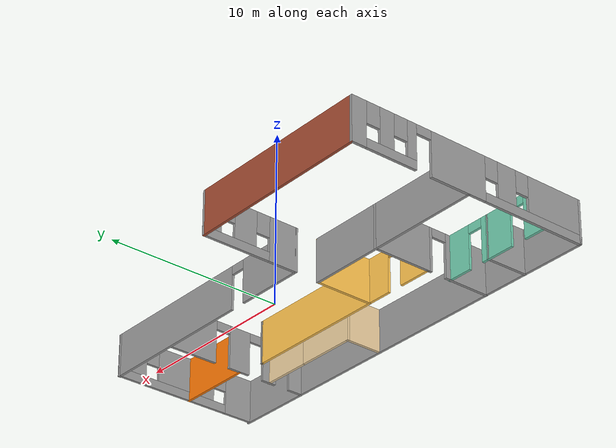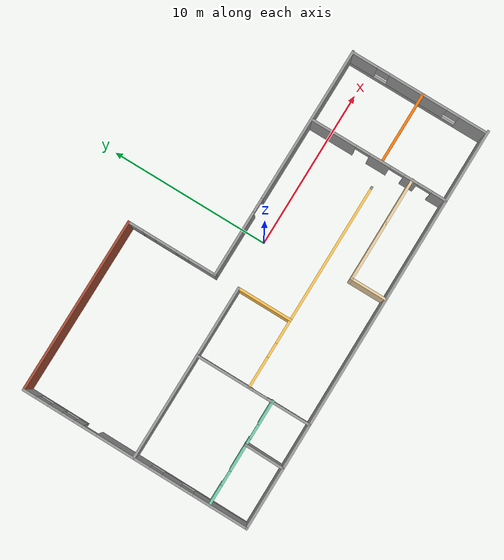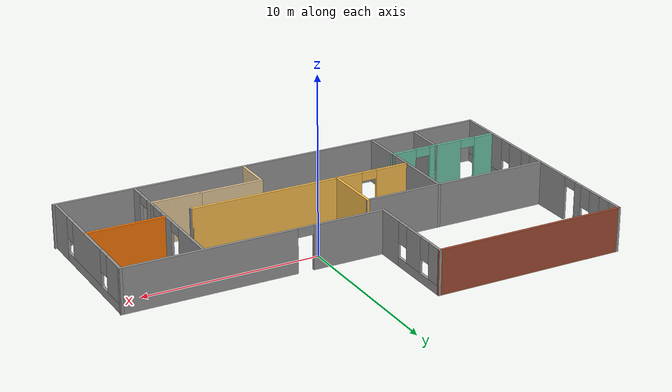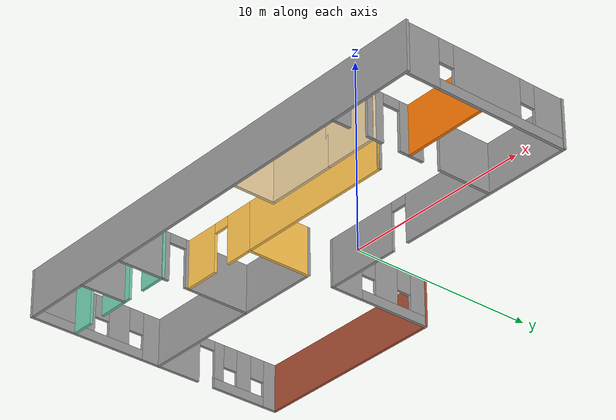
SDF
<?xml version='1.0'?>
<sdf version='1.6'>
  <model name='apartment3'>
    <pose frame=''>-1.19939 -0.31992 0 0 -0 0</pose>
    <link name='Wall_10'>
      <collision name='Wall_10_Collision'>
        <geometry>
          <box>
            <size>3.5 0.15 2.5</size>
          </box>
        </geometry>
        <pose frame=''>0 0 1.25 0 -0 0</pose>
      </collision>
      <visual name='Wall_10_Visual'>
        <pose frame=''>0 0 1.25 0 -0 0</pose>
        <geometry>
          <box>
            <size>3.5 0.15 2.5</size>
          </box>
        </geometry>
        <material>
          <script>
            <uri>file://media/materials/scripts/gazebo.material</uri>
            <name>Gazebo/Grey</name>
          </script>
          <ambient>1 0.764706 0.305882 1</ambient>
        </material>
        <meta>
          <layer>0</layer>
        </meta>
      </visual>
      <pose frame=''>-1.88661 -1.60608 0 0 0 -1.5708</pose>
    </link>
    <link name='Wall_11'>
      <collision name='Wall_11_Collision'>
        <geometry>
          <box>
            <size>8.75 0.15 2.5</size>
          </box>
        </geometry>
        <pose frame=''>0 0 1.25 0 -0 0</pose>
      </collision>
      <visual name='Wall_11_Visual'>
        <pose frame=''>0 0 1.25 0 -0 0</pose>
        <geometry>
          <box>
            <size>8.75 0.15 2.5</size>
          </box>
        </geometry>
        <material>
          <script>
            <uri>file://media/materials/scripts/gazebo.material</uri>
            <name>Gazebo/Grey</name>
          </script>
          <ambient>1 0.764706 0.305882 1</ambient>
        </material>
        <meta>
          <layer>0</layer>
        </meta>
      </visual>
      <pose frame=''>2.41339 -3.28108 0 0 -0 0</pose>
    </link>
    <link name='Wall_12'>
      <collision name='Wall_12_Collision'>
        <geometry>
          <box>
            <size>0.15 0.15 2.5</size>
          </box>
        </geometry>
        <pose frame=''>0 0 1.25 0 -0 0</pose>
      </collision>
      <visual name='Wall_12_Visual'>
        <pose frame=''>0 0 1.25 0 -0 0</pose>
        <geometry>
          <box>
            <size>0.15 0.15 2.5</size>
          </box>
        </geometry>
        <material>
          <script>
            <uri>file://media/materials/scripts/gazebo.material</uri>
            <name>Gazebo/Grey</name>
          </script>
          <ambient>1 1 1 1</ambient>
        </material>
        <meta>
          <layer>0</layer>
        </meta>
      </visual>
      <pose frame=''>6.71339 -3.28108 0 0 -0 0</pose>
    </link>
    <link name='Wall_13'>
      <collision name='Wall_13_Collision'>
        <geometry>
          <box>
            <size>0.16 0.15 2.5</size>
          </box>
        </geometry>
        <pose frame=''>0 0 1.25 0 -0 0</pose>
      </collision>
      <visual name='Wall_13_Visual'>
        <pose frame=''>0 0 1.25 0 -0 0</pose>
        <geometry>
          <box>
            <size>0.16 0.15 2.5</size>
          </box>
        </geometry>
        <material>
          <script>
            <uri>file://media/materials/scripts/gazebo.material</uri>
            <name>Gazebo/Grey</name>
          </script>
          <ambient>1 1 1 1</ambient>
        </material>
        <meta>
          <layer>0</layer>
        </meta>
      </visual>
      <pose frame=''>6.71842 -3.28104 0 0 -0 0.00746</pose>
    </link>
    <link name='Wall_14'>
      <collision name='Wall_14_Collision'>
        <geometry>
          <box>
            <size>0.16 0.15 2.5</size>
          </box>
        </geometry>
        <pose frame=''>0 0 1.25 0 -0 0</pose>
      </collision>
      <visual name='Wall_14_Visual'>
        <pose frame=''>0 0 1.25 0 -0 0</pose>
        <geometry>
          <box>
            <size>0.16 0.15 2.5</size>
          </box>
        </geometry>
        <material>
          <script>
            <uri>file://media/materials/scripts/gazebo.material</uri>
            <name>Gazebo/Grey</name>
          </script>
          <ambient>1 1 1 1</ambient>
        </material>
        <meta>
          <layer>0</layer>
        </meta>
      </visual>
      <pose frame=''>6.71842 -3.28104 0 0 0 -3.13413</pose>
    </link>
    <link name='Wall_16'>
      <pose frame=''>8.25991 -2.85552 0 0 0 -1.5708</pose>
      <visual name='Wall_16_Visual_0'>
        <pose frame=''>-2.94428 0 1.25 0 -0 0</pose>
        <geometry>
          <box>
            <size>2.86145 0.15 2.5</size>
          </box>
        </geometry>
        <material>
          <script>
            <uri>file://media/materials/scripts/gazebo.material</uri>
            <name>Gazebo/Grey</name>
          </script>
          <ambient>1 1 1 1</ambient>
        </material>
        <meta>
          <layer>0</layer>
        </meta>
      </visual>
      <collision name='Wall_16_Collision_0'>
        <geometry>
          <box>
            <size>2.86145 0.15 2.5</size>
          </box>
        </geometry>
        <pose frame=''>-2.94428 0 1.25 0 -0 0</pose>
      </collision>
      <visual name='Wall_16_Visual_1'>
        <pose frame=''>0.048975 0 1.25 0 -0 0</pose>
        <geometry>
          <box>
            <size>1.32506 0.15 2.5</size>
          </box>
        </geometry>
        <material>
          <script>
            <uri>file://media/materials/scripts/gazebo.material</uri>
            <name>Gazebo/Grey</name>
          </script>
          <ambient>1 1 1 1</ambient>
        </material>
        <meta>
          <layer>0</layer>
        </meta>
      </visual>
      <collision name='Wall_16_Collision_1'>
        <geometry>
          <box>
            <size>1.32506 0.15 2.5</size>
          </box>
        </geometry>
        <pose frame=''>0.048975 0 1.25 0 -0 0</pose>
      </collision>
      <visual name='Wall_16_Visual_2'>
        <pose frame=''>2.05153 0 1.25 0 -0 0</pose>
        <geometry>
          <box>
            <size>0.880045 0.15 2.5</size>
          </box>
        </geometry>
        <material>
          <script>
            <uri>file://media/materials/scripts/gazebo.material</uri>
            <name>Gazebo/Grey</name>
          </script>
          <ambient>1 1 1 1</ambient>
        </material>
        <meta>
          <layer>0</layer>
        </meta>
      </visual>
      <collision name='Wall_16_Collision_2'>
        <geometry>
          <box>
            <size>0.880045 0.15 2.5</size>
          </box>
        </geometry>
        <pose frame=''>2.05153 0 1.25 0 -0 0</pose>
      </collision>
      <visual name='Wall_16_Visual_3'>
        <pose frame=''>3.88327 0 1.25 0 -0 0</pose>
        <geometry>
          <box>
            <size>0.983452 0.15 2.5</size>
          </box>
        </geometry>
        <material>
          <script>
            <uri>file://media/materials/scripts/gazebo.material</uri>
            <name>Gazebo/Grey</name>
          </script>
          <ambient>1 1 1 1</ambient>
        </material>
        <meta>
          <layer>0</layer>
        </meta>
      </visual>
      <collision name='Wall_16_Collision_3'>
        <geometry>
          <box>
            <size>0.983452 0.15 2.5</size>
          </box>
        </geometry>
        <pose frame=''>3.88327 0 1.25 0 -0 0</pose>
      </collision>
      <visual name='Wall_16_Visual_4'>
        <pose frame=''>-1.06355 0 2.25 0 -0 0</pose>
        <geometry>
          <box>
            <size>0.9 0.15 0.5</size>
          </box>
        </geometry>
        <material>
          <script>
            <uri>file://media/materials/scripts/gazebo.material</uri>
            <name>Gazebo/Grey</name>
          </script>
          <ambient>1 1 1 1</ambient>
        </material>
        <meta>
          <layer>0</layer>
        </meta>
      </visual>
      <collision name='Wall_16_Collision_4'>
        <geometry>
          <box>
            <size>0.9 0.15 0.5</size>
          </box>
        </geometry>
        <pose frame=''>-1.06355 0 2.25 0 -0 0</pose>
      </collision>
      <visual name='Wall_16_Visual_5'>
        <pose frame=''>1.1615 0 2.25 0 -0 0</pose>
        <geometry>
          <box>
            <size>0.9 0.15 0.5</size>
          </box>
        </geometry>
        <material>
          <script>
            <uri>file://media/materials/scripts/gazebo.material</uri>
            <name>Gazebo/Grey</name>
          </script>
          <ambient>1 1 1 1</ambient>
        </material>
        <meta>
          <layer>0</layer>
        </meta>
      </visual>
      <collision name='Wall_16_Collision_5'>
        <geometry>
          <box>
            <size>0.9 0.15 0.5</size>
          </box>
        </geometry>
        <pose frame=''>1.1615 0 2.25 0 -0 0</pose>
      </collision>
      <visual name='Wall_16_Visual_6'>
        <pose frame=''>2.94155 0 2.25 0 -0 0</pose>
        <geometry>
          <box>
            <size>0.9 0.15 0.5</size>
          </box>
        </geometry>
        <material>
          <script>
            <uri>file://media/materials/scripts/gazebo.material</uri>
            <name>Gazebo/Grey</name>
          </script>
          <ambient>1 1 1 1</ambient>
        </material>
        <meta>
          <layer>0</layer>
        </meta>
      </visual>
      <collision name='Wall_16_Collision_6'>
        <geometry>
          <box>
            <size>0.9 0.15 0.5</size>
          </box>
        </geometry>
        <pose frame=''>2.94155 0 2.25 0 -0 0</pose>
      </collision>
    </link>
    <link name='Wall_18'>
      <collision name='Wall_18_Collision'>
        <geometry>
          <box>
            <size>4.5 0.15 2.5</size>
          </box>
        </geometry>
        <pose frame=''>0 0 1.25 0 -0 0</pose>
      </collision>
      <visual name='Wall_18_Visual'>
        <pose frame=''>0 0 1.25 0 -0 0</pose>
        <geometry>
          <box>
            <size>4.5 0.15 2.5</size>
          </box>
        </geometry>
        <material>
          <script>
            <uri>file://media/materials/scripts/gazebo.material</uri>
            <name>Gazebo/Grey</name>
          </script>
          <ambient>0.996078 0.47451 0.0196078 1</ambient>
        </material>
        <meta>
          <layer>0</layer>
        </meta>
      </visual>
      <pose frame=''>10.5154 -3.00608 0 0 -0 0</pose>
    </link>
    <link name='Wall_2'>
      <pose frame=''>12.6905 -2.72492 0 0 -0 1.5708</pose>
      <visual name='Wall_2_Visual_0'>
        <pose frame=''>-3.51901 0 1.25 0 -0 0</pose>
        <geometry>
          <box>
            <size>1.71197 0.15 2.5</size>
          </box>
        </geometry>
        <material>
          <script>
            <uri>file://media/materials/scripts/gazebo.material</uri>
            <name>Gazebo/Grey</name>
          </script>
          <ambient>1 1 1 1</ambient>
        </material>
        <meta>
          <layer>0</layer>
        </meta>
      </visual>
      <collision name='Wall_2_Collision_0'>
        <geometry>
          <box>
            <size>1.71197 0.15 2.5</size>
          </box>
        </geometry>
        <pose frame=''>-3.51901 0 1.25 0 -0 0</pose>
      </collision>
      <visual name='Wall_2_Visual_1'>
        <pose frame=''>0.855986 0 0.25 0 -0 0</pose>
        <geometry>
          <box>
            <size>7.03803 0.15 0.5</size>
          </box>
        </geometry>
        <material>
          <script>
            <uri>file://media/materials/scripts/gazebo.material</uri>
            <name>Gazebo/Grey</name>
          </script>
          <ambient>1 1 1 1</ambient>
        </material>
        <meta>
          <layer>0</layer>
        </meta>
      </visual>
      <collision name='Wall_2_Collision_1'>
        <geometry>
          <box>
            <size>7.03803 0.15 0.5</size>
          </box>
        </geometry>
        <pose frame=''>0.855986 0 0.25 0 -0 0</pose>
      </collision>
      <visual name='Wall_2_Visual_2'>
        <pose frame=''>0.002484 0 1.5 0 -0 0</pose>
        <geometry>
          <box>
            <size>3.73102 0.15 2</size>
          </box>
        </geometry>
        <material>
          <script>
            <uri>file://media/materials/scripts/gazebo.material</uri>
            <name>Gazebo/Grey</name>
          </script>
          <ambient>1 1 1 1</ambient>
        </material>
        <meta>
          <layer>0</layer>
        </meta>
      </visual>
      <collision name='Wall_2_Collision_2'>
        <geometry>
          <box>
            <size>3.73102 0.15 2</size>
          </box>
        </geometry>
        <pose frame=''>0.002484 0 1.5 0 -0 0</pose>
      </collision>
      <visual name='Wall_2_Visual_3'>
        <pose frame=''>3.5215 0 1.5 0 -0 0</pose>
        <geometry>
          <box>
            <size>1.707 0.15 2</size>
          </box>
        </geometry>
        <material>
          <script>
            <uri>file://media/materials/scripts/gazebo.material</uri>
            <name>Gazebo/Grey</name>
          </script>
          <ambient>1 1 1 1</ambient>
        </material>
        <meta>
          <layer>0</layer>
        </meta>
      </visual>
      <collision name='Wall_2_Collision_3'>
        <geometry>
          <box>
            <size>1.707 0.15 2</size>
          </box>
        </geometry>
        <pose frame=''>3.5215 0 1.5 0 -0 0</pose>
      </collision>
      <visual name='Wall_2_Visual_4'>
        <pose frame=''>-2.26303 0 1.9 0 -0 0</pose>
        <geometry>
          <box>
            <size>0.8 0.15 1.2</size>
          </box>
        </geometry>
        <material>
          <script>
            <uri>file://media/materials/scripts/gazebo.material</uri>
            <name>Gazebo/Grey</name>
          </script>
          <ambient>1 1 1 1</ambient>
        </material>
        <meta>
          <layer>0</layer>
        </meta>
      </visual>
      <collision name='Wall_2_Collision_4'>
        <geometry>
          <box>
            <size>0.8 0.15 1.2</size>
          </box>
        </geometry>
        <pose frame=''>-2.26303 0 1.9 0 -0 0</pose>
      </collision>
      <visual name='Wall_2_Visual_5'>
        <pose frame=''>2.268 0 1.9 0 -0 0</pose>
        <geometry>
          <box>
            <size>0.8 0.15 1.2</size>
          </box>
        </geometry>
        <material>
          <script>
            <uri>file://media/materials/scripts/gazebo.material</uri>
            <name>Gazebo/Grey</name>
          </script>
          <ambient>1 1 1 1</ambient>
        </material>
        <meta>
          <layer>0</layer>
        </meta>
      </visual>
      <collision name='Wall_2_Collision_5'>
        <geometry>
          <box>
            <size>0.8 0.15 1.2</size>
          </box>
        </geometry>
        <pose frame=''>2.268 0 1.9 0 -0 0</pose>
      </collision>
    </link>
    <link name='Wall_20'>
      <pose frame=''>-4.06161 -3.28108 0 0 -0 3.14159</pose>
      <visual name='Wall_20_Visual_0'>
        <pose frame=''>-1.46261 0 1.25 0 -0 0</pose>
        <geometry>
          <box>
            <size>1.57477 0.15 2.5</size>
          </box>
        </geometry>
        <material>
          <script>
            <uri>file://media/materials/scripts/gazebo.material</uri>
            <name>Gazebo/Grey</name>
          </script>
          <ambient>1 0.764706 0.305882 1</ambient>
        </material>
        <meta>
          <layer>0</layer>
        </meta>
      </visual>
      <collision name='Wall_20_Collision_0'>
        <geometry>
          <box>
            <size>1.57477 0.15 2.5</size>
          </box>
        </geometry>
        <pose frame=''>-1.46261 0 1.25 0 -0 0</pose>
      </collision>
      <visual name='Wall_20_Visual_1'>
        <pose frame=''>1.23739 0 1.25 0 -0 0</pose>
        <geometry>
          <box>
            <size>2.02523 0.15 2.5</size>
          </box>
        </geometry>
        <material>
          <script>
            <uri>file://media/materials/scripts/gazebo.material</uri>
            <name>Gazebo/Grey</name>
          </script>
          <ambient>1 0.764706 0.305882 1</ambient>
        </material>
        <meta>
          <layer>0</layer>
        </meta>
      </visual>
      <collision name='Wall_20_Collision_1'>
        <geometry>
          <box>
            <size>2.02523 0.15 2.5</size>
          </box>
        </geometry>
        <pose frame=''>1.23739 0 1.25 0 -0 0</pose>
      </collision>
      <visual name='Wall_20_Visual_2'>
        <pose frame=''>-0.225227 0 2.25 0 -0 0</pose>
        <geometry>
          <box>
            <size>0.9 0.15 0.5</size>
          </box>
        </geometry>
        <material>
          <script>
            <uri>file://media/materials/scripts/gazebo.material</uri>
            <name>Gazebo/Grey</name>
          </script>
          <ambient>1 0.764706 0.305882 1</ambient>
        </material>
        <meta>
          <layer>0</layer>
        </meta>
      </visual>
      <collision name='Wall_20_Collision_2'>
        <geometry>
          <box>
            <size>0.9 0.15 0.5</size>
          </box>
        </geometry>
        <pose frame=''>-0.225227 0 2.25 0 -0 0</pose>
      </collision>
    </link>
    <link name='Wall_21'>
      <collision name='Wall_21_Collision'>
        <geometry>
          <box>
            <size>3.5 0.15 2.5</size>
          </box>
        </geometry>
        <pose frame=''>0 0 1.25 0 -0 0</pose>
      </collision>
      <visual name='Wall_21_Visual'>
        <pose frame=''>0 0 1.25 0 -0 0</pose>
        <geometry>
          <box>
            <size>3.5 0.15 2.5</size>
          </box>
        </geometry>
        <material>
          <script>
            <uri>file://media/materials/scripts/gazebo.material</uri>
            <name>Gazebo/Grey</name>
          </script>
          <ambient>1 1 1 1</ambient>
        </material>
        <meta>
          <layer>0</layer>
        </meta>
      </visual>
      <pose frame=''>-6.23658 -1.60604 0 0 -0 1.57077</pose>
    </link>
    <link name='Wall_22'>
      <collision name='Wall_22_Collision'>
        <geometry>
          <box>
            <size>0.16 0.15 2.5</size>
          </box>
        </geometry>
        <pose frame=''>0 0 1.25 0 -0 0</pose>
      </collision>
      <visual name='Wall_22_Visual'>
        <pose frame=''>0 0 1.25 0 -0 0</pose>
        <geometry>
          <box>
            <size>0.16 0.15 2.5</size>
          </box>
        </geometry>
        <material>
          <script>
            <uri>file://media/materials/scripts/gazebo.material</uri>
            <name>Gazebo/Grey</name>
          </script>
          <ambient>1 1 1 1</ambient>
        </material>
        <meta>
          <layer>0</layer>
        </meta>
      </visual>
      <pose frame=''>-6.23154 0.068995 0 0 -0 0</pose>
    </link>
    <link name='Wall_24'>
      <pose frame=''>-6.23658 -5.20604 0 0 0 -1.57078</pose>
      <visual name='Wall_24_Visual_0'>
        <pose frame=''>-1.83971 0 1.25 0 -0 0</pose>
        <geometry>
          <box>
            <size>0.320582 0.15 2.5</size>
          </box>
        </geometry>
        <material>
          <script>
            <uri>file://media/materials/scripts/gazebo.material</uri>
            <name>Gazebo/Grey</name>
          </script>
          <ambient>1 1 1 1</ambient>
        </material>
        <meta>
          <layer>0</layer>
        </meta>
      </visual>
      <collision name='Wall_24_Collision_0'>
        <geometry>
          <box>
            <size>0.320582 0.15 2.5</size>
          </box>
        </geometry>
        <pose frame=''>-1.83971 0 1.25 0 -0 0</pose>
      </collision>
      <visual name='Wall_24_Visual_1'>
        <pose frame=''>0.610291 0 1.25 0 -0 0</pose>
        <geometry>
          <box>
            <size>2.77942 0.15 2.5</size>
          </box>
        </geometry>
        <material>
          <script>
            <uri>file://media/materials/scripts/gazebo.material</uri>
            <name>Gazebo/Grey</name>
          </script>
          <ambient>1 1 1 1</ambient>
        </material>
        <meta>
          <layer>0</layer>
        </meta>
      </visual>
      <collision name='Wall_24_Collision_1'>
        <geometry>
          <box>
            <size>2.77942 0.15 2.5</size>
          </box>
        </geometry>
        <pose frame=''>0.610291 0 1.25 0 -0 0</pose>
      </collision>
      <visual name='Wall_24_Visual_2'>
        <pose frame=''>-1.22942 0 2.25 0 -0 0</pose>
        <geometry>
          <box>
            <size>0.9 0.15 0.5</size>
          </box>
        </geometry>
        <material>
          <script>
            <uri>file://media/materials/scripts/gazebo.material</uri>
            <name>Gazebo/Grey</name>
          </script>
          <ambient>1 1 1 1</ambient>
        </material>
        <meta>
          <layer>0</layer>
        </meta>
      </visual>
      <collision name='Wall_24_Collision_2'>
        <geometry>
          <box>
            <size>0.9 0.15 0.5</size>
          </box>
        </geometry>
        <pose frame=''>-1.22942 0 2.25 0 -0 0</pose>
      </collision>
    </link>
    <link name='Wall_26'>
      <pose frame=''>-10.8151 -4.78608 0 0 -0 0</pose>
      <visual name='Wall_26_Visual_0'>
        <pose frame=''>-1.31408 0 1.25 0 -0 0</pose>
        <geometry>
          <box>
            <size>1.20276 0.15 2.5</size>
          </box>
        </geometry>
        <material>
          <script>
            <uri>file://media/materials/scripts/gazebo.material</uri>
            <name>Gazebo/Grey</name>
          </script>
          <ambient>0.435294 0.796078 0.67451 1</ambient>
        </material>
        <meta>
          <layer>0</layer>
        </meta>
      </visual>
      <collision name='Wall_26_Collision_0'>
        <geometry>
          <box>
            <size>1.20276 0.15 2.5</size>
          </box>
        </geometry>
        <pose frame=''>-1.31408 0 1.25 0 -0 0</pose>
      </collision>
      <visual name='Wall_26_Visual_1'>
        <pose frame=''>1.05138 0 1.25 0 -0 0</pose>
        <geometry>
          <box>
            <size>1.72815 0.15 2.5</size>
          </box>
        </geometry>
        <material>
          <script>
            <uri>file://media/materials/scripts/gazebo.material</uri>
            <name>Gazebo/Grey</name>
          </script>
          <ambient>0.435294 0.796078 0.67451 1</ambient>
        </material>
        <meta>
          <layer>0</layer>
        </meta>
      </visual>
      <collision name='Wall_26_Collision_1'>
        <geometry>
          <box>
            <size>1.72815 0.15 2.5</size>
          </box>
        </geometry>
        <pose frame=''>1.05138 0 1.25 0 -0 0</pose>
      </collision>
      <visual name='Wall_26_Visual_2'>
        <pose frame=''>-0.262694 0 2.25 0 -0 0</pose>
        <geometry>
          <box>
            <size>0.9 0.15 0.5</size>
          </box>
        </geometry>
        <material>
          <script>
            <uri>file://media/materials/scripts/gazebo.material</uri>
            <name>Gazebo/Grey</name>
          </script>
          <ambient>0.435294 0.796078 0.67451 1</ambient>
        </material>
        <meta>
          <layer>0</layer>
        </meta>
      </visual>
      <collision name='Wall_26_Collision_2'>
        <geometry>
          <box>
            <size>0.9 0.15 0.5</size>
          </box>
        </geometry>
        <pose frame=''>-0.262694 0 2.25 0 -0 0</pose>
      </collision>
    </link>
    <link name='Wall_27'>
      <collision name='Wall_27_Collision'>
        <geometry>
          <box>
            <size>2.5 0.15 2.5</size>
          </box>
        </geometry>
        <pose frame=''>0 0 1.25 0 -0 0</pose>
      </collision>
      <visual name='Wall_27_Visual'>
        <pose frame=''>0 0 1.25 0 -0 0</pose>
        <geometry>
          <box>
            <size>2.5 0.15 2.5</size>
          </box>
        </geometry>
        <material>
          <script>
            <uri>file://media/materials/scripts/gazebo.material</uri>
            <name>Gazebo/Grey</name>
          </script>
          <ambient>1 1 1 1</ambient>
        </material>
        <meta>
          <layer>0</layer>
        </meta>
      </visual>
      <pose frame=''>-8.99489 -5.96088 0 0 0 -1.58806</pose>
    </link>
    <link name='Wall_29'>
      <collision name='Wall_29_Collision'>
        <geometry>
          <box>
            <size>3 0.15 2.5</size>
          </box>
        </geometry>
        <pose frame=''>0 0 1.25 0 -0 0</pose>
      </collision>
      <visual name='Wall_29_Visual'>
        <pose frame=''>0 0 1.25 0 -0 0</pose>
        <geometry>
          <box>
            <size>3 0.15 2.5</size>
          </box>
        </geometry>
        <material>
          <script>
            <uri>file://media/materials/scripts/gazebo.material</uri>
            <name>Gazebo/Grey</name>
          </script>
          <ambient>0.921569 0.807843 0.615686 1</ambient>
        </material>
        <meta>
          <layer>0</layer>
        </meta>
      </visual>
      <pose frame=''>6.85339 -4.98808 0 0 -0 0</pose>
    </link>
    <link name='Wall_3'>
      <pose frame=''>5.39046 1.57508 0 0 -0 3.14159</pose>
      <visual name='Wall_3_Visual_0'>
        <pose frame=''>-2.53556 0 1.25 0 -0 0</pose>
        <geometry>
          <box>
            <size>9.75979 0.15 2.5</size>
          </box>
        </geometry>
        <material>
          <script>
            <uri>file://media/materials/scripts/gazebo.material</uri>
            <name>Gazebo/Grey</name>
          </script>
          <ambient>1 1 1 1</ambient>
        </material>
        <meta>
          <layer>0</layer>
        </meta>
      </visual>
      <collision name='Wall_3_Collision_0'>
        <geometry>
          <box>
            <size>9.75979 0.15 2.5</size>
          </box>
        </geometry>
        <pose frame=''>-2.53556 0 1.25 0 -0 0</pose>
      </collision>
      <visual name='Wall_3_Visual_1'>
        <pose frame=''>5.32989 0 1.25 0 -0 0</pose>
        <geometry>
          <box>
            <size>4.17112 0.15 2.5</size>
          </box>
        </geometry>
        <material>
          <script>
            <uri>file://media/materials/scripts/gazebo.material</uri>
            <name>Gazebo/Grey</name>
          </script>
          <ambient>1 1 1 1</ambient>
        </material>
        <meta>
          <layer>0</layer>
        </meta>
      </visual>
      <collision name='Wall_3_Collision_1'>
        <geometry>
          <box>
            <size>4.17112 0.15 2.5</size>
          </box>
        </geometry>
        <pose frame=''>5.32989 0 1.25 0 -0 0</pose>
      </collision>
      <visual name='Wall_3_Visual_2'>
        <pose frame=''>2.79433 0 2.25 0 -0 0</pose>
        <geometry>
          <box>
            <size>0.9 0.15 0.5</size>
          </box>
        </geometry>
        <material>
          <script>
            <uri>file://media/materials/scripts/gazebo.material</uri>
            <name>Gazebo/Grey</name>
          </script>
          <ambient>1 1 1 1</ambient>
        </material>
        <meta>
          <layer>0</layer>
        </meta>
      </visual>
      <collision name='Wall_3_Collision_2'>
        <geometry>
          <box>
            <size>0.9 0.15 0.5</size>
          </box>
        </geometry>
        <pose frame=''>2.79433 0 2.25 0 -0 0</pose>
      </collision>
    </link>
    <link name='Wall_31'>
      <collision name='Wall_31_Collision'>
        <geometry>
          <box>
            <size>3.75 0.15 2.5</size>
          </box>
        </geometry>
        <pose frame=''>0 0 1.25 0 -0 0</pose>
      </collision>
      <visual name='Wall_31_Visual'>
        <pose frame=''>0 0 1.25 0 -0 0</pose>
        <geometry>
          <box>
            <size>3.75 0.15 2.5</size>
          </box>
        </geometry>
        <material>
          <script>
            <uri>file://media/materials/scripts/gazebo.material</uri>
            <name>Gazebo/Grey</name>
          </script>
          <ambient>0.921569 0.807843 0.615686 1</ambient>
        </material>
        <meta>
          <layer>0</layer>
        </meta>
      </visual>
      <pose frame=''>3.62839 -4.98808 0 0 -0 3.14159</pose>
    </link>
    <link name='Wall_32'>
      <collision name='Wall_32_Collision'>
        <geometry>
          <box>
            <size>2.25 0.15 2.5</size>
          </box>
        </geometry>
        <pose frame=''>0 0 1.25 0 -0 0</pose>
      </collision>
      <visual name='Wall_32_Visual'>
        <pose frame=''>0 0 1.25 0 -0 0</pose>
        <geometry>
          <box>
            <size>2.25 0.15 2.5</size>
          </box>
        </geometry>
        <material>
          <script>
            <uri>file://media/materials/scripts/gazebo.material</uri>
            <name>Gazebo/Grey</name>
          </script>
          <ambient>0.921569 0.807843 0.615686 1</ambient>
        </material>
        <meta>
          <layer>0</layer>
        </meta>
      </visual>
      <pose frame=''>1.82839 -6.03808 0 0 0 -1.5708</pose>
    </link>
    <link name='Wall_34'>
      <pose frame=''>-7.59011 -4.78608 0 0 -0 0</pose>
      <visual name='Wall_34_Visual_0'>
        <pose frame=''>-1.22198 0 1.25 0 -0 0</pose>
        <geometry>
          <box>
            <size>0.475131 0.15 2.5</size>
          </box>
        </geometry>
        <material>
          <script>
            <uri>file://media/materials/scripts/gazebo.material</uri>
            <name>Gazebo/Grey</name>
          </script>
          <ambient>0.435294 0.796078 0.67451 1</ambient>
        </material>
        <meta>
          <layer>0</layer>
        </meta>
      </visual>
      <collision name='Wall_34_Collision_0'>
        <geometry>
          <box>
            <size>0.475131 0.15 2.5</size>
          </box>
        </geometry>
        <pose frame=''>-1.22198 0 1.25 0 -0 0</pose>
      </collision>
      <visual name='Wall_34_Visual_1'>
        <pose frame=''>0.687566 0 1.25 0 -0 0</pose>
        <geometry>
          <box>
            <size>1.54396 0.15 2.5</size>
          </box>
        </geometry>
        <material>
          <script>
            <uri>file://media/materials/scripts/gazebo.material</uri>
            <name>Gazebo/Grey</name>
          </script>
          <ambient>0.435294 0.796078 0.67451 1</ambient>
        </material>
        <meta>
          <layer>0</layer>
        </meta>
      </visual>
      <collision name='Wall_34_Collision_1'>
        <geometry>
          <box>
            <size>1.54396 0.15 2.5</size>
          </box>
        </geometry>
        <pose frame=''>0.687566 0 1.25 0 -0 0</pose>
      </collision>
      <visual name='Wall_34_Visual_2'>
        <pose frame=''>-0.534413 0 2.25 0 -0 0</pose>
        <geometry>
          <box>
            <size>0.9 0.15 0.5</size>
          </box>
        </geometry>
        <material>
          <script>
            <uri>file://media/materials/scripts/gazebo.material</uri>
            <name>Gazebo/Grey</name>
          </script>
          <ambient>0.435294 0.796078 0.67451 1</ambient>
        </material>
        <meta>
          <layer>0</layer>
        </meta>
      </visual>
      <collision name='Wall_34_Collision_2'>
        <geometry>
          <box>
            <size>0.9 0.15 0.5</size>
          </box>
        </geometry>
        <pose frame=''>-0.534413 0 2.25 0 -0 0</pose>
      </collision>
    </link>
    <link name='Wall_36'>
      <collision name='Wall_36_Collision'>
        <geometry>
          <box>
            <size>25.75 0.15 2.5</size>
          </box>
        </geometry>
        <pose frame=''>0 0 1.25 0 -0 0</pose>
      </collision>
      <visual name='Wall_36_Visual'>
        <pose frame=''>0 0 1.25 0 -0 0</pose>
        <geometry>
          <box>
            <size>25.75 0.15 2.5</size>
          </box>
        </geometry>
        <material>
          <script>
            <uri>file://media/materials/scripts/gazebo.material</uri>
            <name>Gazebo/Grey</name>
          </script>
          <ambient>1 1 1 1</ambient>
        </material>
        <meta>
          <layer>0</layer>
        </meta>
      </visual>
      <pose frame=''>1e-06 -7.17492 0 0 -0 0</pose>
    </link>
    <link name='Wall_4'>
      <pose frame=''>-1.94981 4.375 0 0 -0 1.57073</pose>
      <visual name='Wall_4_Visual_0'>
        <pose frame=''>-1.99026 0 1.25 0 -0 0</pose>
        <geometry>
          <box>
            <size>1.76948 0.15 2.5</size>
          </box>
        </geometry>
        <material>
          <script>
            <uri>file://media/materials/scripts/gazebo.material</uri>
            <name>Gazebo/Grey</name>
          </script>
          <ambient>1 1 1 1</ambient>
        </material>
        <meta>
          <layer>0</layer>
        </meta>
      </visual>
      <collision name='Wall_4_Collision_0'>
        <geometry>
          <box>
            <size>1.76948 0.15 2.5</size>
          </box>
        </geometry>
        <pose frame=''>-1.99026 0 1.25 0 -0 0</pose>
      </collision>
      <visual name='Wall_4_Visual_1'>
        <pose frame=''>0.884742 0 0.25 0 -0 0</pose>
        <geometry>
          <box>
            <size>3.98052 0.15 0.5</size>
          </box>
        </geometry>
        <material>
          <script>
            <uri>file://media/materials/scripts/gazebo.material</uri>
            <name>Gazebo/Grey</name>
          </script>
          <ambient>1 1 1 1</ambient>
        </material>
        <meta>
          <layer>0</layer>
        </meta>
      </visual>
      <collision name='Wall_4_Collision_1'>
        <geometry>
          <box>
            <size>3.98052 0.15 0.5</size>
          </box>
        </geometry>
        <pose frame=''>0.884742 0 0.25 0 -0 0</pose>
      </collision>
      <visual name='Wall_4_Visual_2'>
        <pose frame=''>0.366527 0 1.5 0 -0 0</pose>
        <geometry>
          <box>
            <size>1.34409 0.15 2</size>
          </box>
        </geometry>
        <material>
          <script>
            <uri>file://media/materials/scripts/gazebo.material</uri>
            <name>Gazebo/Grey</name>
          </script>
          <ambient>1 1 1 1</ambient>
        </material>
        <meta>
          <layer>0</layer>
        </meta>
      </visual>
      <collision name='Wall_4_Collision_2'>
        <geometry>
          <box>
            <size>1.34409 0.15 2</size>
          </box>
        </geometry>
        <pose frame=''>0.366527 0 1.5 0 -0 0</pose>
      </collision>
      <visual name='Wall_4_Visual_3'>
        <pose frame=''>2.35678 0 1.5 0 -0 0</pose>
        <geometry>
          <box>
            <size>1.03643 0.15 2</size>
          </box>
        </geometry>
        <material>
          <script>
            <uri>file://media/materials/scripts/gazebo.material</uri>
            <name>Gazebo/Grey</name>
          </script>
          <ambient>1 1 1 1</ambient>
        </material>
        <meta>
          <layer>0</layer>
        </meta>
      </visual>
      <collision name='Wall_4_Collision_3'>
        <geometry>
          <box>
            <size>1.03643 0.15 2</size>
          </box>
        </geometry>
        <pose frame=''>2.35678 0 1.5 0 -0 0</pose>
      </collision>
      <visual name='Wall_4_Visual_4'>
        <pose frame=''>-0.705516 0 1.9 0 -0 0</pose>
        <geometry>
          <box>
            <size>0.8 0.15 1.2</size>
          </box>
        </geometry>
        <material>
          <script>
            <uri>file://media/materials/scripts/gazebo.material</uri>
            <name>Gazebo/Grey</name>
          </script>
          <ambient>1 1 1 1</ambient>
        </material>
        <meta>
          <layer>0</layer>
        </meta>
      </visual>
      <collision name='Wall_4_Collision_4'>
        <geometry>
          <box>
            <size>0.8 0.15 1.2</size>
          </box>
        </geometry>
        <pose frame=''>-0.705516 0 1.9 0 -0 0</pose>
      </collision>
      <visual name='Wall_4_Visual_5'>
        <pose frame=''>1.43857 0 1.9 0 -0 0</pose>
        <geometry>
          <box>
            <size>0.8 0.15 1.2</size>
          </box>
        </geometry>
        <material>
          <script>
            <uri>file://media/materials/scripts/gazebo.material</uri>
            <name>Gazebo/Grey</name>
          </script>
          <ambient>1 1 1 1</ambient>
        </material>
        <meta>
          <layer>0</layer>
        </meta>
      </visual>
      <collision name='Wall_4_Collision_5'>
        <geometry>
          <box>
            <size>0.8 0.15 1.2</size>
          </box>
        </geometry>
        <pose frame=''>1.43857 0 1.9 0 -0 0</pose>
      </collision>
    </link>
    <link name='Wall_5'>
      <collision name='Wall_5_Collision'>
        <geometry>
          <box>
            <size>11 0.15 2.5</size>
          </box>
        </geometry>
        <pose frame=''>0 0 1.25 0 -0 0</pose>
      </collision>
      <visual name='Wall_5_Visual'>
        <pose frame=''>0 0 1.25 0 -0 0</pose>
        <geometry>
          <box>
            <size>11 0.15 2.5</size>
          </box>
        </geometry>
        <material>
          <script>
            <uri>file://media/materials/scripts/gazebo.material</uri>
            <name>Gazebo/Bricks</name>
          </script>
          <ambient>1 1 1 1</ambient>
        </material>
        <meta>
          <layer>0</layer>
        </meta>
      </visual>
      <pose frame=''>-7.37461 7.17492 0 0 -0 3.14159</pose>
    </link>
    <link name='Wall_6'>
      <pose frame=''>-12.7998 -2e-06 0 0 0 -1.57082</pose>
      <visual name='Wall_6_Visual_0'>
        <pose frame=''>-6.81268 0 1.25 0 -0 0</pose>
        <geometry>
          <box>
            <size>0.874632 0.15 2.5</size>
          </box>
        </geometry>
        <material>
          <script>
            <uri>file://media/materials/scripts/gazebo.material</uri>
            <name>Gazebo/Grey</name>
          </script>
          <ambient>1 1 1 1</ambient>
        </material>
        <meta>
          <layer>0</layer>
        </meta>
      </visual>
      <collision name='Wall_6_Collision_0'>
        <geometry>
          <box>
            <size>0.874632 0.15 2.5</size>
          </box>
        </geometry>
        <pose frame=''>-6.81268 0 1.25 0 -0 0</pose>
      </collision>
      <visual name='Wall_6_Visual_1'>
        <pose frame=''>-0.751883 0 1.25 0 -0 0</pose>
        <geometry>
          <box>
            <size>3.39779 0.15 2.5</size>
          </box>
        </geometry>
        <material>
          <script>
            <uri>file://media/materials/scripts/gazebo.material</uri>
            <name>Gazebo/Grey</name>
          </script>
          <ambient>1 1 1 1</ambient>
        </material>
        <meta>
          <layer>0</layer>
        </meta>
      </visual>
      <collision name='Wall_6_Collision_1'>
        <geometry>
          <box>
            <size>3.39779 0.15 2.5</size>
          </box>
        </geometry>
        <pose frame=''>-0.751883 0 1.25 0 -0 0</pose>
      </collision>
      <visual name='Wall_6_Visual_2'>
        <pose frame=''>-4.86307 0 0.25 0 -0 0</pose>
        <geometry>
          <box>
            <size>3.02459 0.15 0.5</size>
          </box>
        </geometry>
        <material>
          <script>
            <uri>file://media/materials/scripts/gazebo.material</uri>
            <name>Gazebo/Grey</name>
          </script>
          <ambient>1 1 1 1</ambient>
        </material>
        <meta>
          <layer>0</layer>
        </meta>
      </visual>
      <collision name='Wall_6_Collision_2'>
        <geometry>
          <box>
            <size>3.02459 0.15 0.5</size>
          </box>
        </geometry>
        <pose frame=''>-4.86307 0 0.25 0 -0 0</pose>
      </collision>
      <visual name='Wall_6_Visual_3'>
        <pose frame=''>4.09851 0 0.25 0 -0 0</pose>
        <geometry>
          <box>
            <size>6.30299 0.15 0.5</size>
          </box>
        </geometry>
        <material>
          <script>
            <uri>file://media/materials/scripts/gazebo.material</uri>
            <name>Gazebo/Grey</name>
          </script>
          <ambient>1 1 1 1</ambient>
        </material>
        <meta>
          <layer>0</layer>
        </meta>
      </visual>
      <collision name='Wall_6_Collision_3'>
        <geometry>
          <box>
            <size>6.30299 0.15 0.5</size>
          </box>
        </geometry>
        <pose frame=''>4.09851 0 0.25 0 -0 0</pose>
      </collision>
      <visual name='Wall_6_Visual_4'>
        <pose frame=''>-5.14604 0 1.5 0 -0 0</pose>
        <geometry>
          <box>
            <size>0.858661 0.15 2</size>
          </box>
        </geometry>
        <material>
          <script>
            <uri>file://media/materials/scripts/gazebo.material</uri>
            <name>Gazebo/Grey</name>
          </script>
          <ambient>1 1 1 1</ambient>
        </material>
        <meta>
          <layer>0</layer>
        </meta>
      </visual>
      <collision name='Wall_6_Collision_4'>
        <geometry>
          <box>
            <size>0.858661 0.15 2</size>
          </box>
        </geometry>
        <pose frame=''>-5.14604 0 1.5 0 -0 0</pose>
      </collision>
      <visual name='Wall_6_Visual_5'>
        <pose frame=''>-3.63374 0 1.5 0 -0 0</pose>
        <geometry>
          <box>
            <size>0.56593 0.15 2</size>
          </box>
        </geometry>
        <material>
          <script>
            <uri>file://media/materials/scripts/gazebo.material</uri>
            <name>Gazebo/Grey</name>
          </script>
          <ambient>1 1 1 1</ambient>
        </material>
        <meta>
          <layer>0</layer>
        </meta>
      </visual>
      <collision name='Wall_6_Collision_5'>
        <geometry>
          <box>
            <size>0.56593 0.15 2</size>
          </box>
        </geometry>
        <pose frame=''>-3.63374 0 1.5 0 -0 0</pose>
      </collision>
      <visual name='Wall_6_Visual_6'>
        <pose frame=''>-3.63374 0 1.5 0 -0 0</pose>
        <geometry>
          <box>
            <size>0.56593 0.15 2</size>
          </box>
        </geometry>
        <material>
          <script>
            <uri>file://media/materials/scripts/gazebo.material</uri>
            <name>Gazebo/Grey</name>
          </script>
          <ambient>1 1 1 1</ambient>
        </material>
        <meta>
          <layer>0</layer>
        </meta>
      </visual>
      <collision name='Wall_6_Collision_6'>
        <geometry>
          <box>
            <size>0.56593 0.15 2</size>
          </box>
        </geometry>
        <pose frame=''>-3.63374 0 1.5 0 -0 0</pose>
      </collision>
      <visual name='Wall_6_Visual_7'>
        <pose frame=''>2.33816 0 1.5 0 -0 0</pose>
        <geometry>
          <box>
            <size>1.1823 0.15 2</size>
          </box>
        </geometry>
        <material>
          <script>
            <uri>file://media/materials/scripts/gazebo.material</uri>
            <name>Gazebo/Grey</name>
          </script>
          <ambient>1 1 1 1</ambient>
        </material>
        <meta>
          <layer>0</layer>
        </meta>
      </visual>
      <collision name='Wall_6_Collision_7'>
        <geometry>
          <box>
            <size>1.1823 0.15 2</size>
          </box>
        </geometry>
        <pose frame=''>2.33816 0 1.5 0 -0 0</pose>
      </collision>
      <visual name='Wall_6_Visual_8'>
        <pose frame=''>5.48966 0 1.5 0 -0 0</pose>
        <geometry>
          <box>
            <size>3.52069 0.15 2</size>
          </box>
        </geometry>
        <material>
          <script>
            <uri>file://media/materials/scripts/gazebo.material</uri>
            <name>Gazebo/Grey</name>
          </script>
          <ambient>1 1 1 1</ambient>
        </material>
        <meta>
          <layer>0</layer>
        </meta>
      </visual>
      <collision name='Wall_6_Collision_8'>
        <geometry>
          <box>
            <size>3.52069 0.15 2</size>
          </box>
        </geometry>
        <pose frame=''>5.48966 0 1.5 0 -0 0</pose>
      </collision>
      <visual name='Wall_6_Visual_9'>
        <pose frame=''>-5.97537 0 1.9 0 -0 0</pose>
        <geometry>
          <box>
            <size>0.8 0.15 1.2</size>
          </box>
        </geometry>
        <material>
          <script>
            <uri>file://media/materials/scripts/gazebo.material</uri>
            <name>Gazebo/Grey</name>
          </script>
          <ambient>1 1 1 1</ambient>
        </material>
        <meta>
          <layer>0</layer>
        </meta>
      </visual>
      <collision name='Wall_6_Collision_9'>
        <geometry>
          <box>
            <size>0.8 0.15 1.2</size>
          </box>
        </geometry>
        <pose frame=''>-5.97537 0 1.9 0 -0 0</pose>
      </collision>
      <visual name='Wall_6_Visual_10'>
        <pose frame=''>1.34701 0 1.9 0 -0 0</pose>
        <geometry>
          <box>
            <size>0.8 0.15 1.2</size>
          </box>
        </geometry>
        <material>
          <script>
            <uri>file://media/materials/scripts/gazebo.material</uri>
            <name>Gazebo/Grey</name>
          </script>
          <ambient>1 1 1 1</ambient>
        </material>
        <meta>
          <layer>0</layer>
        </meta>
      </visual>
      <collision name='Wall_6_Collision_10'>
        <geometry>
          <box>
            <size>0.8 0.15 1.2</size>
          </box>
        </geometry>
        <pose frame=''>1.34701 0 1.9 0 -0 0</pose>
      </collision>
      <visual name='Wall_6_Visual_11'>
        <pose frame=''>-4.31671 0 1.9 0 -0 0</pose>
        <geometry>
          <box>
            <size>0.8 0.15 1.2</size>
          </box>
        </geometry>
        <material>
          <script>
            <uri>file://media/materials/scripts/gazebo.material</uri>
            <name>Gazebo/Grey</name>
          </script>
          <ambient>1 1 1 1</ambient>
        </material>
        <meta>
          <layer>0</layer>
        </meta>
      </visual>
      <collision name='Wall_6_Collision_11'>
        <geometry>
          <box>
            <size>0.8 0.15 1.2</size>
          </box>
        </geometry>
        <pose frame=''>-4.31671 0 1.9 0 -0 0</pose>
      </collision>
      <visual name='Wall_6_Visual_12'>
        <pose frame=''>3.32931 0 1.9 0 -0 0</pose>
        <geometry>
          <box>
            <size>0.8 0.15 1.2</size>
          </box>
        </geometry>
        <material>
          <script>
            <uri>file://media/materials/scripts/gazebo.material</uri>
            <name>Gazebo/Grey</name>
          </script>
          <ambient>1 1 1 1</ambient>
        </material>
        <meta>
          <layer>0</layer>
        </meta>
      </visual>
      <collision name='Wall_6_Collision_12'>
        <geometry>
          <box>
            <size>0.8 0.15 1.2</size>
          </box>
        </geometry>
        <pose frame=''>3.32931 0 1.9 0 -0 0</pose>
      </collision>
      <visual name='Wall_6_Visual_13'>
        <pose frame=''>-2.90078 0 2.25 0 -0 0</pose>
        <geometry>
          <box>
            <size>0.9 0.15 0.5</size>
          </box>
        </geometry>
        <material>
          <script>
            <uri>file://media/materials/scripts/gazebo.material</uri>
            <name>Gazebo/Grey</name>
          </script>
          <ambient>1 1 1 1</ambient>
        </material>
        <meta>
          <layer>0</layer>
        </meta>
      </visual>
      <collision name='Wall_6_Collision_13'>
        <geometry>
          <box>
            <size>0.9 0.15 0.5</size>
          </box>
        </geometry>
        <pose frame=''>-2.90078 0 2.25 0 -0 0</pose>
      </collision>
      <visual name='Wall_6_Visual_14'>
        <pose frame=''>-2.90078 0 2.25 0 -0 0</pose>
        <geometry>
          <box>
            <size>0.9 0.15 0.5</size>
          </box>
        </geometry>
        <material>
          <script>
            <uri>file://media/materials/scripts/gazebo.material</uri>
            <name>Gazebo/Grey</name>
          </script>
          <ambient>1 1 1 1</ambient>
        </material>
        <meta>
          <layer>0</layer>
        </meta>
      </visual>
      <collision name='Wall_6_Collision_14'>
        <geometry>
          <box>
            <size>0.9 0.15 0.5</size>
          </box>
        </geometry>
        <pose frame=''>-2.90078 0 2.25 0 -0 0</pose>
      </collision>
    </link>
    <link name='Wall_7'>
      <collision name='Wall_7_Collision'>
        <geometry>
          <box>
            <size>0.15 0.15 2.5</size>
          </box>
        </geometry>
        <pose frame=''>0 0 1.25 0 -0 0</pose>
      </collision>
      <visual name='Wall_7_Visual'>
        <pose frame=''>0 0 1.25 0 -0 0</pose>
        <geometry>
          <box>
            <size>0.15 0.15 2.5</size>
          </box>
        </geometry>
        <material>
          <script>
            <uri>file://media/materials/scripts/gazebo.material</uri>
            <name>Gazebo/Grey</name>
          </script>
          <ambient>1 1 1 1</ambient>
        </material>
        <meta>
          <layer>0</layer>
        </meta>
      </visual>
      <pose frame=''>-12.8 -7.17492 0 0 -0 0</pose>
    </link>
    <link name='Wall_9'>
      <collision name='Wall_9_Collision'>
        <geometry>
          <box>
            <size>11 0.15 2.5</size>
          </box>
        </geometry>
        <pose frame=''>0 0 1.25 0 -0 0</pose>
      </collision>
      <visual name='Wall_9_Visual'>
        <pose frame=''>0 0 1.25 0 -0 0</pose>
        <geometry>
          <box>
            <size>11 0.15 2.5</size>
          </box>
        </geometry>
        <material>
          <script>
            <uri>file://media/materials/scripts/gazebo.material</uri>
            <name>Gazebo/Grey</name>
          </script>
          <ambient>1 1 1 1</ambient>
        </material>
        <meta>
          <layer>0</layer>
        </meta>
      </visual>
      <pose frame=''>-7.31158 0.068957 0 0 0 -7e-06</pose>
    </link>
    <static>1</static>
  </model>
</sdf>
